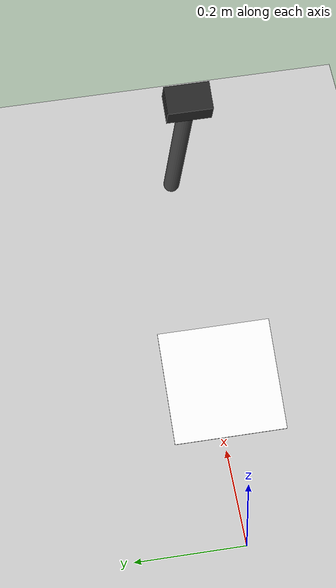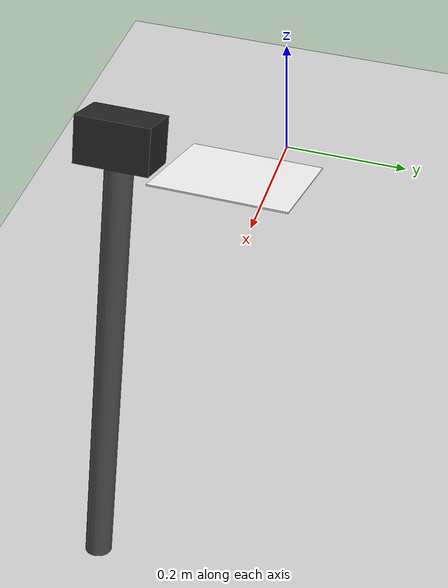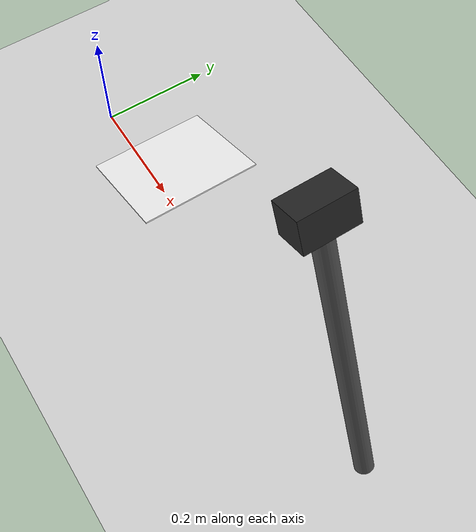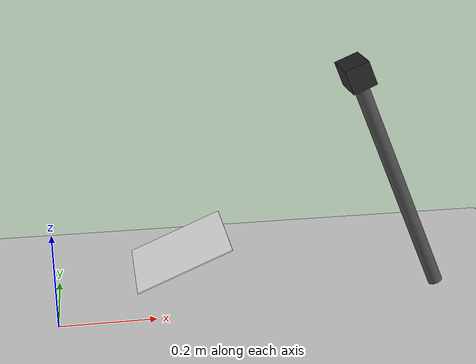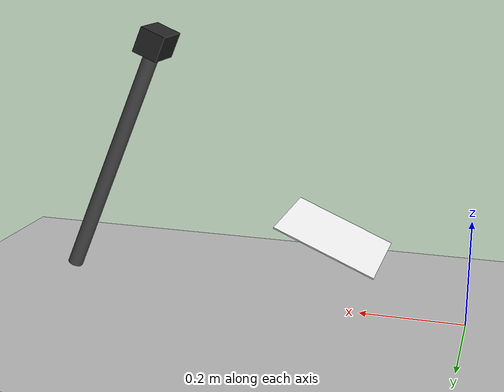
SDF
<?xml version="1.0" ?>
<sdf version="1.10">
  <world name="apriltag_test_world">

    <!-- ── Physics ──────────────────────────────────────────────── -->
    <physics name="1ms" type="ignored">
      <max_step_size>0.001</max_step_size>
      <real_time_factor>1.0</real_time_factor>
    </physics>

    <!-- ── System plugins ───────────────────────────────────────── -->
    <plugin filename="gz-sim-physics-system"
            name="gz::sim::systems::Physics"/>
    <plugin filename="gz-sim-user-commands-system"
            name="gz::sim::systems::UserCommands"/>
    <plugin filename="gz-sim-scene-broadcaster-system"
            name="gz::sim::systems::SceneBroadcaster"/>
    <plugin filename="gz-sim-sensors-system"
            name="gz::sim::systems::Sensors">
      <render_engine>ogre2</render_engine>
    </plugin>

    <gravity>0 0 -9.81</gravity>

    <!-- ── Lighting ─────────────────────────────────────────────── -->
    <light name="sun" type="directional">
      <cast_shadows>true</cast_shadows>
      <pose>0 0 10 0 0 0</pose>
      <diffuse>0.8 0.8 0.8 1</diffuse>
      <specular>0.2 0.2 0.2 1</specular>
      <direction>-0.5 0.1 -0.9</direction>
    </light>

    <!-- ── Ground plane ─────────────────────────────────────────── -->
    <model name="ground_plane">
      <static>true</static>
      <link name="link">
        <collision name="collision">
          <geometry>
            <plane><normal>0 0 1</normal><size>10 10</size></plane>
          </geometry>
        </collision>
        <visual name="visual">
          <geometry>
            <plane><normal>0 0 1</normal><size>10 10</size></plane>
          </geometry>
          <material>
            <ambient>0.8 0.8 0.8 1</ambient>
            <diffuse>0.8 0.8 0.8 1</diffuse>
          </material>
        </visual>
      </link>
    </model>

    <!-- ── Camera on a stand (eye-to-hand setup) ────────────────── -->
    <model name="calibration_camera">
      <static>true</static>
      <pose>0.6 0 0.5 0 0.4 3.14159</pose>
      <!-- stand -->
      <link name="stand_link">
        <visual name="stand_visual">
          <pose>0 0 -0.25 0 0 0</pose>
          <geometry>
            <cylinder><radius>0.015</radius><length>0.5</length></cylinder>
          </geometry>
          <material><ambient>0.3 0.3 0.3 1</ambient></material>
        </visual>
      </link>
      <!-- camera body -->
      <link name="camera_link">
        <visual name="camera_visual">
          <geometry>
            <box><size>0.05 0.08 0.05</size></box>
          </geometry>
          <material>
            <ambient>0.1 0.1 0.1 1</ambient>
            <diffuse>0.15 0.15 0.15 1</diffuse>
          </material>
        </visual>
        <sensor name="camera_sensor" type="camera">
          <always_on>true</always_on>
          <update_rate>15</update_rate>
          <camera>
            <horizontal_fov>1.0472</horizontal_fov>
            <image>
              <width>640</width>
              <height>480</height>
              <format>R8G8B8</format>
            </image>
            <clip><near>0.05</near><far>10.0</far></clip>
          </camera>
          <topic>calibration_camera/image_raw</topic>
        </sensor>
      </link>
      <joint name="stand_to_camera" type="fixed">
        <parent>stand_link</parent>
        <child>camera_link</child>
      </joint>
    </model>

    <!-- ── AprilTag board ───────────────────────────────────────── -->
    <!--
      Placed at x=0.25, y=0, z=0.15, rotated to face the camera.
      The board is 0.20 m × 0.20 m with tag36h11 id 0.
    -->
    <include>
      <uri>model://apriltag_board</uri>
      <name>apriltag_target</name>
      <pose>0.25 0 0.15 0 -0.4 0</pose>
    </include>

  </world>
</sdf>

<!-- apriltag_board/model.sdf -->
<sdf version="1.10">
  <model name="apriltag_board">
    <static>true</static>
    <link name="board_link">
      <visual name="board_visual">
        <geometry>
          <!-- Thin flat box: 0.20 m × 0.20 m × 0.002 m -->
          <box><size>0.20 0.20 0.002</size></box>
        </geometry>
        <material>
          <ambient>1 1 1 1</ambient>
          <diffuse>1 1 1 1</diffuse>
          <specular>0.1 0.1 0.1 1</specular>
          <pbr>
            <metal>
              <albedo_map>materials/textures/tag36h11_id0.png</albedo_map>
              <metalness>0.0</metalness>
              <roughness>1.0</roughness>
            </metal>
          </pbr>
        </material>
      </visual>
      <collision name="board_collision">
        <geometry>
          <box><size>0.20 0.20 0.002</size></box>
        </geometry>
      </collision>
    </link>
  </model>
</sdf>
